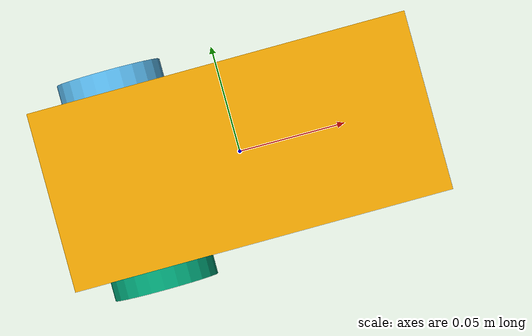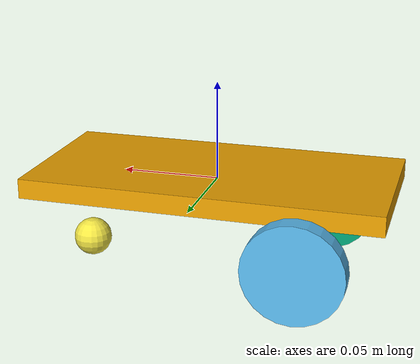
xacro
<?xml version="1.0"?>
<robot xmlns:xacro="http://www.ros.org/wiki/xacro" name="adeept_car_a">

  <xacro:property name="base_width" value="0.085"/>
  <xacro:property name="base_len" value="0.18"/>
  <xacro:property name="base_mass" value="0.9"/>
  <xacro:property name="wheel_radius" value="0.025"/>
  <xacro:property name="wheel_width" value="0.01"/>
  <xacro:property name="wheel_mass" value="0.03"/>
  <xacro:property name="base_wheel_gap" value="0.005"/>
  <xacro:property name="wheel_separation" value="0.105"/>
  <xacro:property name="wheel_joint_offset_x" value="-0.05"/>
  <xacro:property name="wheel_joint_offset_z" value="-0.025"/>
  <xacro:property name="caster_wheel_radius" value="0.01"/>
  <xacro:property name="caster_wheel_joint_offset_x" value="0.07"/>
  <xacro:property name="caster_wheel_joint_offset_z" value="-0.04"/>

  <xacro:include filename="$(find adeept_car_description)/urdf/materials.xacro" />
  <xacro:include filename="$(find adeept_car_description)/urdf/macros.xacro" />

  <link name="base_link">
    <xacro:box_inertia m="${base_mass}" w="${base_len}" h="${base_width}" d="0.01"/>
    <visual>
      <geometry>
        <box size="${base_len} ${base_width} 0.01"/>
      </geometry>
    </visual>
    <collision>
      <geometry>
        <box size="${base_len} ${base_width} 0.01"/>
      </geometry>
    </collision>
  </link>

  <xacro:wheel prefix="left" reflect="1" mass="${wheel_mass}"/>
  <xacro:wheel prefix="right" reflect="-1" mass="${wheel_mass}"/>

   <link name="caster_wheel">
    <visual>
      <origin xyz="0 0 0" rpy="0 0 0"/>
      <geometry>
        <sphere radius="${caster_wheel_radius}"/>
      </geometry>
    </visual>
    <collision>
      <origin xyz="0 0 0" rpy="0 0 0"/>
      <geometry>
        <sphere radius="${caster_wheel_radius}"/>
      </geometry>
    </collision>
    <xacro:sphere_inertia m="5" r="${caster_wheel_radius}"/>
  </link>

  <joint name="caster_wheel_joint" type="continuous">
    <axis xyz="0 1 0" rpy="0 0 0" />
    <parent link="base_link"/>
    <child link="caster_wheel"/>
    <origin xyz="${caster_wheel_joint_offset_x} 0 ${caster_wheel_joint_offset_z}" rpy="0 0 0"/>
  </joint>

  <gazebo reference="caster_wheel" >
    <mu1>1e-6</mu1>
    <mu2>1e-6</mu2>
  </gazebo>

  <gazebo>
    <plugin name="differential_drive_controller" filename="libgazebo_ros_diff_drive.so">
      <alwaysOn>true</alwaysOn>
      <legacyMode>false</legacyMode>
      <updateRate>40</updateRate>
      <leftJoint>left_wheel_joint</leftJoint>
      <rightJoint>right_wheel_joint</rightJoint>
      <wheelSeparation>${wheel_separation}</wheelSeparation>
      <wheelDiameter>${wheel_radius * 2}</wheelDiameter>
      <torque>1</torque>
      <commandTopic>diff_vel</commandTopic>
      <odometryTopic>odom</odometryTopic>
      <odometryFrame>odom</odometryFrame>
      <robotBaseFrame>base_footprint</robotBaseFrame>
    </plugin>
  </gazebo>

  <link name="camera_link">
    <collision>
      <origin xyz="0 0 0" rpy="0 0 0"/>
      <geometry>
      <box size="1e-6 1e-6 1e-6"/>
      </geometry>
    </collision>

    <visual>
      <origin xyz="0 0 0" rpy="0 0 0"/>
      <geometry>
      <box size="1e-6 1e-6 1e-6"/>
      </geometry>
    </visual>

    <inertial>
      <mass value="1e-6" />
      <origin xyz="0 0 0" rpy="0 0 0"/>
      <inertia ixx="1e-6" ixy="0" ixz="0" iyy="1e-6" iyz="0" izz="1e-6" />
    </inertial>
  </link>

   <!-- Camera -->
  <joint name="camera_joint" type="fixed">
    <origin xyz="0.08 0.0 0.08" rpy="0 0.707 0"/>
    <parent link="base_link"/>
    <child link="camera_link"/>
  </joint>

  <gazebo reference="camera_link">
    <sensor type="camera" name="pi_camera">
      <update_rate>15.0</update_rate>
      <camera name="head">
        <horizontal_fov>1.3962634</horizontal_fov>
        <image>
          <width>320</width>
          <height>240</height>
          <format>R8G8B8</format>
        </image>
        <clip>
          <near>0.02</near>
          <far>300</far>
        </clip>
        <noise>
          <type>gaussian</type>
          <!-- Noise is sampled independently per pixel on each frame.
               That pixel's noise value is added to each of its color
               channels, which at that point lie in the range [0,1]. -->
          <mean>0.0</mean>
          <stddev>0.007</stddev>
        </noise>
      </camera>
      <plugin name="camera_controller" filename="libgazebo_ros_camera.so">
        <alwaysOn>true</alwaysOn>m
        <updateRate>0.0</updateRate>
        <cameraName>pi_camera</cameraName>
        <imageTopicName>image</imageTopicName>
        <cameraInfoTopicName>camera_info</cameraInfoTopicName>
        <frameName>camera_link</frameName>
        <hackBaseline>0.07</hackBaseline>
        <distortionK1>0.0</distortionK1>
        <distortionK2>0.0</distortionK2>
        <distortionK3>0.0</distortionK3>
        <distortionT1>0.0</distortionT1>
        <distortionT2>0.0</distortionT2>
      </plugin>
    </sensor>
  </gazebo>
</robot>

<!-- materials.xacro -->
<robot name="adeept_car_a" xmlns:xacro="http://www.ros.org/wiki/xacro">
  <material name="black">
    <color rgba="0.0 0.0 0.0 1.0"/>
  </material>

  <material name="blue">
    <color rgba="0.0 0.0 0.8 1.0"/>
  </material>

  <material name="green">
    <color rgba="0.0 0.8 0.0 1.0"/>
  </material>

  <material name="grey">
    <color rgba="0.2 0.2 0.2 1.0"/>
  </material>

  <material name="orange">
    <color rgba="${255/255} ${108/255} ${10/255} 1.0"/>
  </material>

  <material name="brown">
    <color rgba="${222/255} ${207/255} ${195/255} 1.0"/>
  </material>

  <material name="red">
    <color rgba="0.8 0.0 0.0 1.0"/>
  </material>

  <material name="white">
    <color rgba="1.0 1.0 1.0 1.0"/>
  </material>
</robot>

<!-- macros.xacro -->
<robot name="adeept_car_a" xmlns:xacro="http://www.ros.org/wiki/xacro">
    <xacro:macro name="box_inertia" params="m w h d">
        <inertial>
          <mass value="${m}"/>
          <inertia ixx="${m / 12.0 * (d*d + h*h)}" ixy="0.0" ixz="0.0" iyy="${m / 12.0 * (w*w + h*h)}" iyz="0.0" izz="${m / 12.0 * (w*w + d*d)}"/>
        </inertial>
    </xacro:macro>

    <xacro:macro name="sphere_inertia" params="m r">
        <inertial>
        <mass value="${m}"/>
        <inertia ixx="${2.0*m*(r*r)/5.0}" ixy="0.0" ixz="0.0" iyy="${2.0*m*(r*r)/5.0}" iyz="0.0" izz="${2.0*m*(r*r)/5.0}"/>
        </inertial>
    </xacro:macro>

    <xacro:macro name="cylinder_inertia" params="m r h">
        <inertial>
          <mass value="${m}"/>
          <inertia ixx="${m*(3*r*r+h*h)/12}" ixy = "0" ixz = "0" iyy="${m*(3*r*r+h*h)/12}" iyz = "0" izz="${m*r*r/2}"/>
        </inertial>
    </xacro:macro>

    <xacro:macro name="wheel" params="prefix reflect mass">
        <link name="${prefix}_wheel">
          <visual>
            <origin xyz="0 0 0" rpy="${pi/2} 0 0"/>
            <geometry>
              <cylinder radius="${wheel_radius}" length="${wheel_width}"/>
            </geometry>
          </visual>
          <collision>
            <origin xyz="0 0 0" rpy="${pi/2} 0 0"/>
            <geometry>
              <cylinder radius="${wheel_radius}" length="${wheel_width}"/>
            </geometry>
          </collision>
          <xacro:cylinder_inertia m="${mass}" r="${wheel_radius}" h="${wheel_width}"/>
        </link>

        <joint name="${prefix}_wheel_joint" type="continuous">
          <axis xyz="0 1 0" rpy="0 0 0" />
          <parent link="base_link"/>
          <child link="${prefix}_wheel"/>
          <origin xyz="${wheel_joint_offset_x} ${((base_width/2)+base_wheel_gap)*reflect} ${wheel_joint_offset_z}" rpy="0 0 0"/>
        </joint>

        <gazebo reference="${prefix}_wheel_link" >
            <mu1>1.0</mu1>
            <mu2>1.0</mu2>
        </gazebo>
    </xacro:macro>
</robot>
